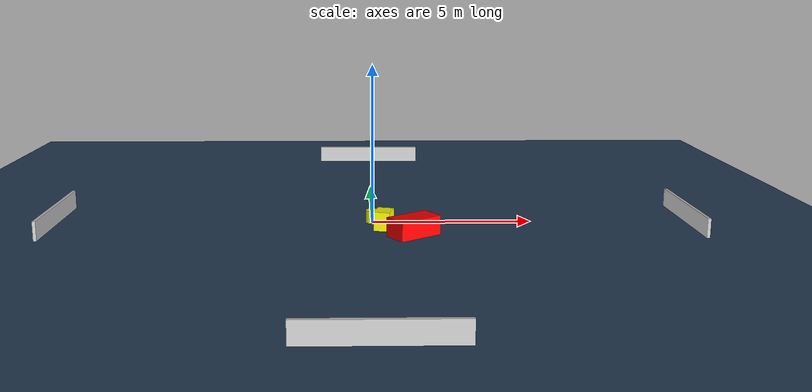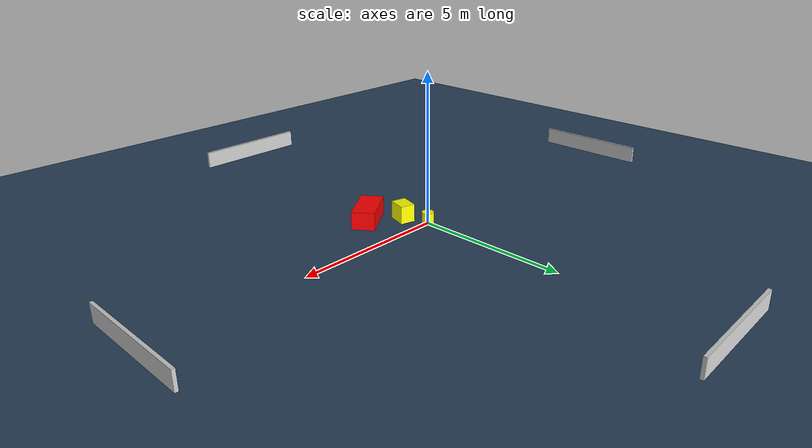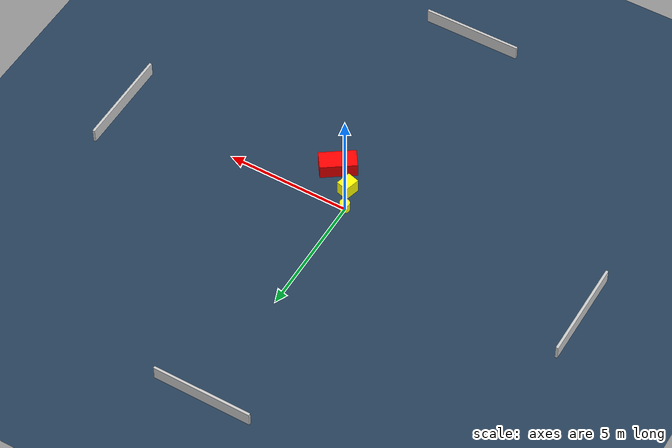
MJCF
<?xml version="1.0" ?>
<mujoco model="generated_environment">
  <option timestep="0.01" integrator="RK4" cone="elliptic"/>
  <default>
    <geom density="1"/>
  </default>
  <asset>
    <texture builtin="gradient" height="3072" name="skybox" rgb1="0.3 0.5 0.7" rgb2="0 0 0" type="skybox" width="512"/>
    <texture builtin="checker" height="300" name="groundplane" rgb1="0.2 0.3 0.4" rgb2="0.1 0.2 0.3" type="2d" width="300"/>
    <material name="groundplane" reflectance="0.2" texrepeat="5 5" texture="groundplane"/>
  </asset>
  <worldbody>
    <light dir="0 0 -1" directional="true" pos="0 0 1.5"/>
    <geom condim="3" friction="0.5 0.005 0.001" material="groundplane" name="floor" pos="0 0 0" size="0 0 0.05" type="plane"/>
    <body name="walls">
      <geom name="wall_1" condim="4" pos="-10.0 0.0 0.3" rgba="0.800000011920929 0.800000011920929 0.800000011920929 1.0" size="0.05 2.0 0.3" type="box"/>
      <geom name="wall_2" condim="4" pos="10.0 0.0 0.3" rgba="0.800000011920929 0.800000011920929 0.800000011920929 1.0" size="0.05 2.0 0.3" type="box"/>
      <geom name="wall_3" condim="4" pos="0.0 -10.0 0.3" rgba="0.800000011920929 0.800000011920929 0.800000011920929 1.0" size="2.0 0.05 0.3" type="box"/>
      <geom name="wall_4" condim="4" pos="0.0 10.0 0.3" rgba="0.800000011920929 0.800000011920929 0.800000011920929 1.0" size="2.0 0.05 0.3" type="box"/>
    </body>
    <body name="robot">
      <joint name="joint_x" type="slide" pos="0 0 0" axis="1 0 0"/>
      <joint name="joint_y" type="slide" pos="0 0 0" axis="0 1 0"/>
      <geom name="robot" type="cylinder" pos="0.0 0.0 0.2" size="0.2 0.2 0.0" mass="5.0" friction="1.0 0.005 0.0001" condim="4" rgba="1.0 1.0 0.0 1.0"/>
    </body>
    <body name="obstacle_1_movable">
      <geom name="obstacle_1_movable" condim="4" pos="0.338488575920868 -0.7965880906105414 0.3" euler="0 0 164.92968328673788" friction="0.0 0.005 0.001" rgba="1.0 1.0 0.0 1.0" size="0.249036534406536 0.31610353828171267 0.3" type="box" mass="0.1"/>
      <joint type="free"/>
    </body>
    <body name="obstacle_2_static">
      <geom name="obstacle_2_static" condim="4" pos="1.2149088428325567 -1.557933865891141 0.3" euler="0 0 305.0169113040744" friction="0.0 0.005 0.001" rgba="1.0 0.0 0.0 1.0" size="0.38051276409402823 0.7327233604179133 0.3" type="box"/>
    </body>
  </worldbody>
  <actuator>
    <motor name="actuator_x" joint="joint_x" gear="1" ctrlrange="-1 1"/>
    <motor name="actuator_y" joint="joint_y" gear="1" ctrlrange="-1 1"/>
  </actuator>
</mujoco>
